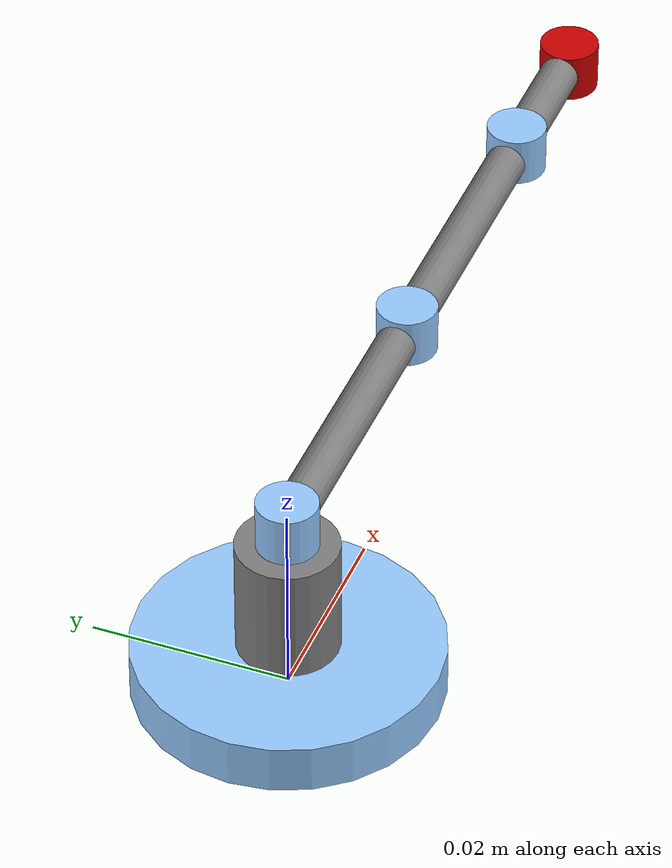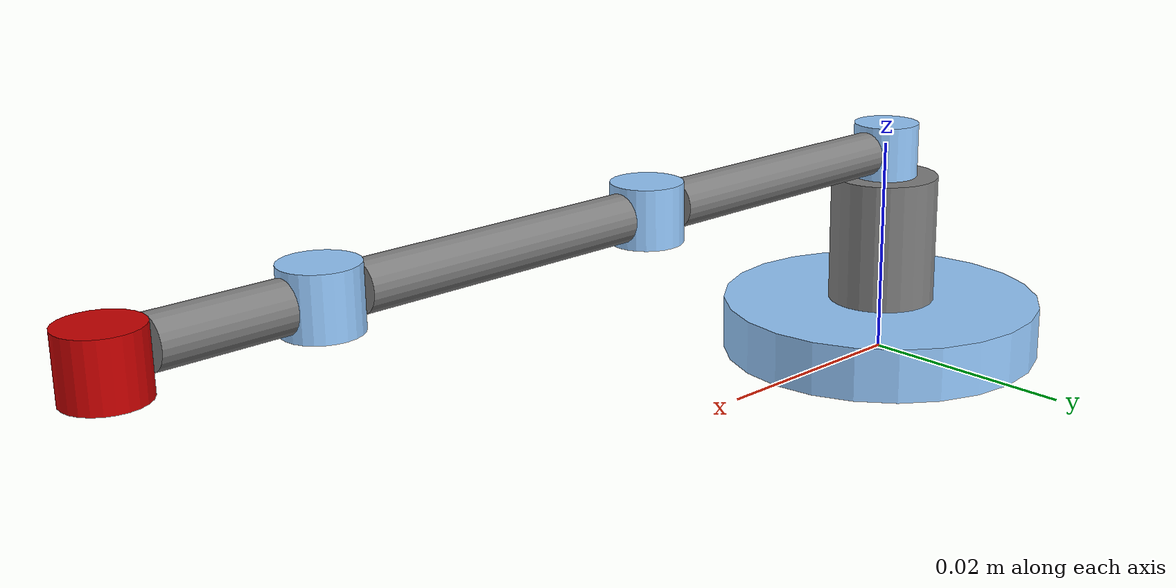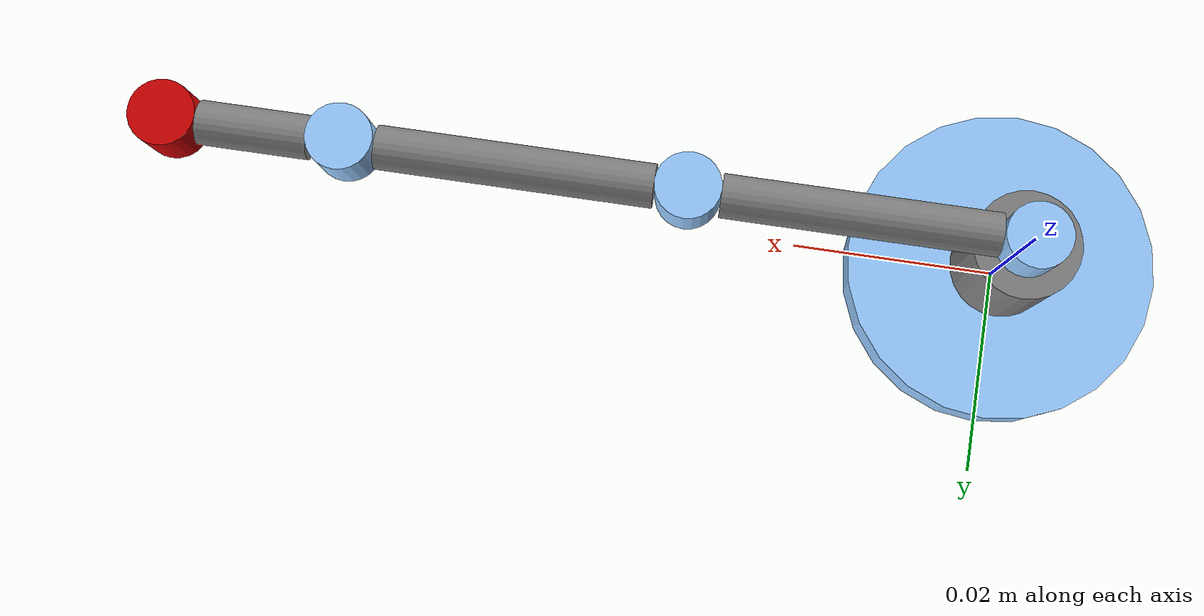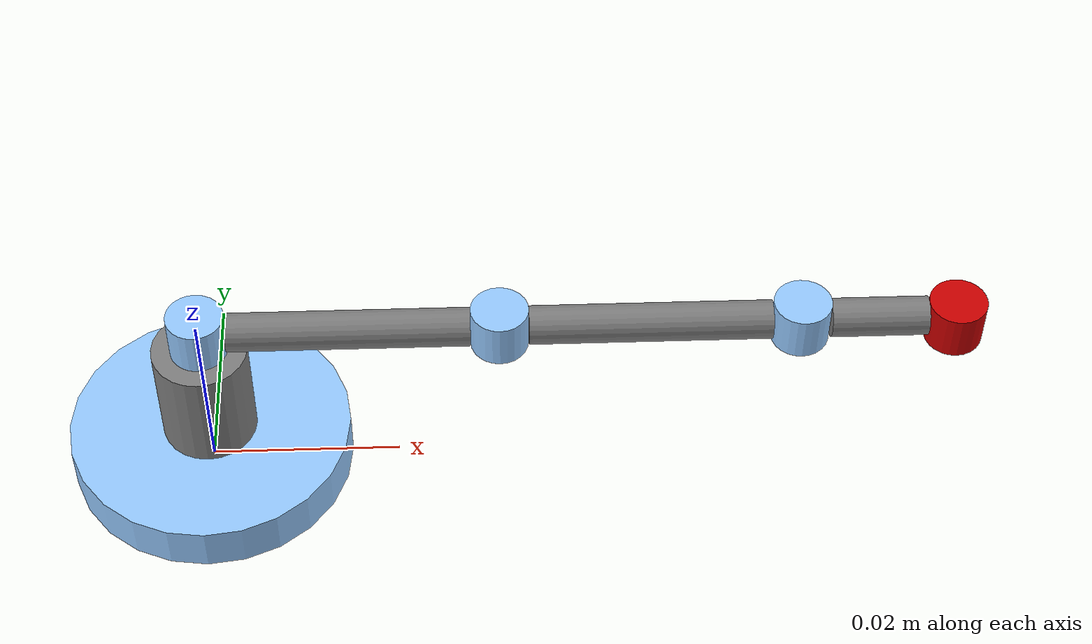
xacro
<?xml version="1.0"?>

<!-- Make the namespace of the robot-->
<robot xmlns:xacro="http://www.ros.org/wiki/xacro" name="r3_arm">

    <!--Define constants-->

    <xacro:property name="M_PI" value="3.14159"/>

    <!-- Constants for the robotic arm (masses in kg, lengths in m) -->

    <xacro:property name="max_effort" value="100" />
    <xacro:property name="max_velocity" value="${M_PI/4}" />

    <xacro:property name="damping_1" value="0.005" />
    <xacro:property name="damping_2" value="0.005" />
    <xacro:property name="damping_3" value="0.005" />

    <xacro:property name="friction_1" value="0.001" />
    <xacro:property name="friction_2" value="0.001" />
    <xacro:property name="friction_3" value="0.001" />

    <!-- base_link -->
    <xacro:property name="length_0" value="0.005" />
    <xacro:property name="radius_0" value="0.015" />
    <xacro:property name="mass_0" value="0.500" />

    <!-- joint_f0 fixed -->

    <!-- link_1 -->
    <xacro:property name="length_1" value="0.012" />
    <xacro:property name="radius_1" value="0.005" />
    <xacro:property name="mass_1" value="0.300" />

    <!-- revolute joint link_1 - link_j1 -->

    <!-- link_j1 -->
    <xacro:property name="length_j1" value="0.005" />
    <xacro:property name="radius_j1" value="0.003" />
    <xacro:property name="mass_j1" value="0.020" />

    <!-- joint_f1 fixed -->

    <!-- link_2 -->
    <xacro:property name="length_2" value="0.025" />
    <xacro:property name="radius_2" value="0.002" />
    <xacro:property name="mass_2" value="0.050" />

    <!-- revolute joint link_2 - link_j2 -->

    <!-- link_j2 -->
    <xacro:property name="length_j2" value="0.005" />
    <xacro:property name="radius_j2" value="0.003" />
    <xacro:property name="mass_j2" value="0.020" />

    <!-- joint_f2 fixed -->

    <!-- link_3 -->
    <xacro:property name="length_3" value="0.025" />
    <xacro:property name="radius_3" value="0.002" />
    <xacro:property name="mass_3" value="0.020" />

    <!-- revolute joint link_3 - link_j3 -->

    <!-- link_j3 -->
    <xacro:property name="length_j3" value="0.005" />
    <xacro:property name="radius_j3" value="0.003" />
    <xacro:property name="mass_j3" value="0.020" />

    <!-- joint_f3 fixed -->

    <!-- link_4 -->
    <xacro:property name="length_4" value="0.010" />
    <xacro:property name="radius_4" value="0.002" />
    <xacro:property name="mass_4" value="0.010" />

    <!-- joint_f4 fixed link_4 - link_ee -->

    <!--Define colors-->
    <material name="Black">
        <color rgba="0.0 0.0 0.0 1.0"/>
    </material>
    <material name="Red">
        <color rgba="0.8 0.0 0.0 1.0"/>
    </material>
    <material name="Blue">
        <color rgba="0.0 0.0 1.0 1.0"/>
    </material>
    <material name="LightBlue">
        <color rgba="0.589 0.793 1.0 1.0"/>
    </material>
    <material name="Grey">
        <color rgba="0.5 0.5 0.5 1.0"/>
    </material>
    <material name="White">
        <color rgba="1.0 1.0 1.0 1.0"/>
    </material>

    <!-- macros for inertia -->

    <!-- ref: https://en.wikipedia.org/wiki/List_of_moments_of_inertia#List_of_3D_inertia_tensors -->

    <xacro:macro name="cylinder_inertial_block" params="mass length radius">
      <inertial>
        <origin xyz="0 0 ${length/2}" rpy="0 0 0"/>
        <mass value="${mass}"/>
        <inertia
            ixx="${mass / 12.0 * (3*radius*radius+length*length)}" ixy="0.0" ixz="0.0"
            iyy="${mass / 12.0 * (3*radius*radius+length*length)}" iyz="0.0"
            izz="${mass / 2.0 * (radius*radius)}" />
      </inertial>
    </xacro:macro>

    <xacro:macro name="box_inertial_block" params="mass x y z">
      <inertial>
        <origin xyz="0 0 ${z/2}" rpy="0 0 0"/>
        <mass value="${mass}"/>
        <inertia
            ixx="${mass / 12.0 * (y*y+z*z)}" ixy="0.0" ixz="0.0"
            iyy="${mass / 12.0 * (x*x+z*z)}" iyz="0.0"
            izz="${mass / 12.0 * (x*x+y*y)}" />
      </inertial>
    </xacro:macro>

    <!-- macros for transmission -->
    <xacro:macro name="transmission_block" params="joint_name">
	  <transmission name="tran1">
	    <type>transmission_interface/SimpleTransmission</type>
	    <joint name="${joint_name}">
          <!-- Position/Velocity/Effort|JointInterface -->
	      <hardwareInterface>hardware_interface/EffortJointInterface</hardwareInterface>
	    </joint>
	    <actuator name="motor_${joint_name}">
	      <hardwareInterface>hardware_interface/EffortJointInterface</hardwareInterface>
	      <mechanicalReduction>1</mechanicalReduction>
	    </actuator>
	  </transmission>
    </xacro:macro>

    <!--Define Gazebo colors-->
    <xacro:macro name="gazebo_grey_link_color_block" params="link_name">
    <gazebo reference="${link_name}">
    <visual>
      <material>
        <ambient>0.5 0.5 0.5 1.0</ambient>
        <diffuse>0.56666695 0.56666695 0.56666695 1.0</diffuse>
        <specular>0.6000003 0.6000003 0.6000003 1.0</specular>
      </material>
    </visual>
    </gazebo>
    </xacro:macro>

    <xacro:macro name="gazebo_blue_link_color_block" params="link_name">
    <gazebo reference="${link_name}">
    <visual>
      <material>
	<ambient>0.589 0.793 1.0 1.0</ambient>
	<diffuse>0.56666695 0.56666695 0.56666695 1.0</diffuse>
	<specular>0.6000003 0.6000003 0.6000003 1.0</specular>
      </material>
    </visual>
    </gazebo>
    </xacro:macro>

    <xacro:macro name="gazebo_orange_link_color_block" params="link_name">
    <gazebo reference="${link_name}">
    <visual>
      <material>
	    <ambient>1.0 0.4 0.0 1.0</ambient>
	    <diffuse>0.56666695 0.56666695 0.56666695 1.0</diffuse>
	    <specular>0.6000003 0.6000003 0.6000003 1.0</specular>
      </material>
    </visual>
    </gazebo>
    </xacro:macro>

    <xacro:macro name="gazebo_red_link_color_block" params="link_name">
    <gazebo reference="${link_name}">
    <visual>
      <material>
	    <ambient>1.0 0.0 0.0 1.0</ambient>
	    <diffuse>0.56666695 0.56666695 0.56666695 1.0</diffuse>
	    <specular>0.6000003 0.6000003 0.6000003 1.0</specular>
      </material>
    </visual>
    </gazebo>
    </xacro:macro>

    <xacro:macro name="gazebo_self_collision" params="link_name">
    <gazebo reference="${link_name}">
      <selfCollide>true</selfCollide>
    </gazebo>
    </xacro:macro>

    <link name="world"/>

    <!-- joint world - base_link -->
    <joint name="world_joint" type="fixed">
        <origin xyz="0.0 0.0 0.0" rpy="0.0 0.0 0.0"/>
        <parent link="world"/>
        <child link="base_link"/>
    </joint>

    <!-- base_link -->
    <link name="base_link">
        <xacro:cylinder_inertial_block mass="${mass_0}" length="${length_0}" radius="${radius_0}"/>
        <visual>
            <origin xyz="0.0 0.0 ${length_0/2.0}" rpy="0.0 0.0 0.0"/>
            <geometry>
                <cylinder radius="${radius_0}" length="${length_0}"/>
            </geometry>
            <material name="LightBlue"/>
        </visual>
        <collision>
            <origin xyz="0.0 0.0 ${length_0/2.0}" rpy="0.0 0.0 0.0"/>
            <geometry>
                <cylinder radius="${radius_0}" length="${length_0}"/>
            </geometry>>
        </collision>
    </link>
    <xacro:gazebo_orange_link_color_block link_name="base_link"/>

    <!-- fixed joint base_link - link_1 -->
    <joint name="joint_f0" type="fixed">
        <origin xyz="0.0 0.0 ${length_0}" rpy="0.0 0.0 0.0"/>
        <parent link="base_link"/>
        <child link="link_1"/>
    </joint>
    <gazebo reference="joint_f0">
        <disableFixedJointLumping>true</disableFixedJointLumping>
        <preserveFixedJoint>true</preserveFixedJoint>
    </gazebo>

    <!-- link_1 -->
    <link name="link_1">
        <xacro:cylinder_inertial_block mass="${mass_1}" length="${length_1}" radius="${radius_1}"/>
        <visual>
            <origin xyz="0.0 0.0 ${length_1/2.0}" rpy="0.0 0.0 0.0"/>
            <geometry>
                <cylinder radius="${radius_1}" length="${length_1}"/>
            </geometry>
            <material name="Grey"/>
        </visual>
        <collision>
            <origin xyz="0.0 0.0 ${length_1/2.0}" rpy="0.0 0.0 0.0"/>
            <geometry>
                <cylinder radius="${radius_1}" length="${length_1}"/>
            </geometry>>
        </collision>
    </link>
    <xacro:gazebo_grey_link_color_block link_name="link_1"/>

    <!-- revolute joint_1 link_1 - link_j1 -->
    <joint name="joint_1" type="revolute">
        <origin xyz="0.0 0.0 ${length_1}" rpy="0.0 0.0 0.0"/>
        <parent link="link_1"/>
        <child link="link_j1"/>
        <axis xyz="0 0 1"/>
        <dynamics damping="${damping_1}" friction="${friction_1}" />
        <limit lower="${-100*M_PI}" upper="${100*M_PI}" effort="${max_effort}" velocity="${max_velocity}"/>
    </joint>

    <!-- link link_j1 -->
    <link name="link_j1">
        <xacro:cylinder_inertial_block mass="${mass_j1}" length="${length_j1}" radius="${radius_j1}"/>
        <visual>
            <origin xyz="0.0 0.0 ${length_j1/2.0}" rpy="0.0 0.0 0.0"/>
            <geometry>
                <cylinder radius="${radius_j1}" length="${length_j1}"/>
            </geometry>
            <material name="LightBlue"/>
        </visual>
        <collision>
            <origin xyz="0.0 0.0 ${length_j1/2.0}" rpy="0.0 0.0 0.0"/>
            <geometry>
                <cylinder radius="${radius_j1}" length="${length_j1}"/>
            </geometry>
        </collision>
    </link>
    <xacro:gazebo_blue_link_color_block link_name="link_j1"/>

    <!-- fixed joint link_j1 - link_2 -->
    <joint name="joint_f1" type="fixed">
        <origin xyz="${radius_j1} 0.0 ${length_j1/2.0}" rpy="0.0 ${M_PI/2} 0.0"/>
        <parent link="link_j1"/>
        <child link="link_2"/>
    </joint>
    <gazebo reference="joint_f1">
        <disableFixedJointLumping>true</disableFixedJointLumping>
        <preserveFixedJoint>true</preserveFixedJoint>
    </gazebo>

    <!--link_2-->
    <link name="link_2">
        <xacro:cylinder_inertial_block mass="${mass_2}" length="${length_2}" radius="${radius_2}"/>
        <visual>
            <origin xyz="0.0 0.0 ${length_2/2.0}" rpy="0.0 0.0 0.0"/>
            <geometry>
                <cylinder radius="${radius_2}" length="${length_2}"/>
            </geometry>
            <material name="Grey"/>
        </visual>
        <collision>
            <origin xyz="0.0 0.0 ${length_2/2.0}" rpy="0.0 0.0 0.0"/>
            <geometry>
                <cylinder radius="${radius_2}" length="${length_2}"/>
            </geometry>>
        </collision>
    </link>
    <xacro:gazebo_grey_link_color_block link_name="link_2"/>

    <!-- revolute joint_2 link_2 - link_j2 -->
    <joint name="joint_2" type="revolute">
        <origin xyz="${length_j2/2.0} 0.0 ${length_2+radius_j2}" rpy="0.0 ${-M_PI/2} 0.0"/>
        <parent link="link_2"/>
        <child link="link_j2"/>
        <axis xyz="0 0 1"/>
        <dynamics damping="${damping_2}" friction="${friction_2}"/>
        <limit lower="${-M_PI*11/12}" upper="${M_PI*11/12}" effort="${max_effort}" velocity="${max_velocity}"/>
    </joint>

    <!-- link link_j2 -->
    <link name="link_j2">
        <xacro:cylinder_inertial_block mass="${mass_j2}" length="${length_j2}" radius="${radius_j2}"/>
        <visual>
            <origin xyz="0.0 0.0 ${length_j2/2.0}" rpy="0.0 0.0 0.0"/>
            <geometry>
                <cylinder radius="${radius_j2}" length="${length_j2}"/>
            </geometry>
            <material name="LightBlue"/>
        </visual>

        <collision>
            <origin xyz="0.0 0.0 ${length_j2/2.0}" rpy="0.0 0.0 0.0"/>
            <geometry>
                <cylinder radius="${radius_j2}" length="${length_j2}"/>
            </geometry>
        </collision>
    </link>
    <xacro:gazebo_blue_link_color_block link_name="link_j2"/>

    <!-- fixed joint link_j2 - link_3 -->
    <joint name="joint_f2" type="fixed">
        <origin xyz="${radius_j2} 0.0 ${length_j2/2.0}" rpy="0.0 ${M_PI/2} 0.0"/>
        <parent link="link_j2"/>
        <child link="link_3"/>
    </joint>
    <gazebo reference="joint_f2">
        <disableFixedJointLumping>true</disableFixedJointLumping>
        <preserveFixedJoint>true</preserveFixedJoint>
    </gazebo>

    <!--link_3-->
    <link name="link_3">
        <xacro:cylinder_inertial_block mass="${mass_3}" length="${length_3}" radius="${radius_3}"/>
        <visual>
            <origin xyz="0.0 0.0 ${length_3/2.0}" rpy="0.0 0.0 0.0"/>
            <geometry>
                <cylinder radius="${radius_3}" length="${length_3}"/>
            </geometry>
            <material name="Grey"/>
        </visual>

        <collision>
            <origin xyz="0.0 0.0 ${length_3/2.0}" rpy="0.0 0.0 0.0"/>
            <geometry>
                <cylinder radius="${radius_3}" length="${length_3}"/>
            </geometry>>
        </collision>
    </link>
    <xacro:gazebo_grey_link_color_block link_name="link_3"/>

    <!-- revolute joint_3 link_3 - link_j3 -->
    <joint name="joint_3" type="revolute">
        <origin xyz="${length_j3/2.0} 0.0 ${length_3+radius_j3}" rpy="0.0 ${-M_PI/2} 0.0"/>
        <parent link="link_3"/>
        <child link="link_j3"/>
        <axis xyz="0 0 1"/>
        <dynamics damping="${damping_3}" friction="${friction_3}"/>
        <limit lower="${-2.2}" upper="${2.2}" effort="${max_effort}" velocity="${max_velocity}"/>
    </joint>

    <!-- link link_j3 -->
    <link name="link_j3">
        <xacro:cylinder_inertial_block mass="${mass_j3}" length="${length_j3}" radius="${radius_j3}"/>
        <visual>
            <origin xyz="0.0 0.0 ${length_j3/2.0}" rpy="0.0 0.0 0.0"/>
            <geometry>
                <cylinder radius="${radius_j3}" length="${length_j3}"/>
            </geometry>
            <material name="LightBlue"/>
        </visual>

        <collision>
            <origin xyz="0.0 0.0 ${length_j3/2.0}" rpy="0.0 0.0 0.0"/>
            <geometry>
                <cylinder radius="${radius_j3}" length="${length_j3}"/>
            </geometry>
        </collision>
    </link>
    <xacro:gazebo_blue_link_color_block link_name="link_j3"/>

    <!-- fixed joint link_j3 - link_4 -->
    <joint name="joint_f3" type="fixed">
        <origin xyz="${radius_j3} 0.0 ${length_j3/2.0}" rpy="0.0 ${M_PI/2} 0.0"/>
        <parent link="link_j3"/>
        <child link="link_4"/>
    </joint>
    <gazebo reference="joint_f3">
        <disableFixedJointLumping>true</disableFixedJointLumping>
        <preserveFixedJoint>true</preserveFixedJoint>
    </gazebo>

    <!--link_4-->
    <link name="link_4">
        <xacro:cylinder_inertial_block mass="${mass_4}" length="${length_4}" radius="${radius_4}"/>
        <visual>
            <origin xyz="0.0 0.0 ${length_4/2.0}" rpy="0.0 0.0 0.0"/>
            <geometry>
                <cylinder radius="${radius_4}" length="${length_4}"/>
            </geometry>
            <material name="Grey"/>
        </visual>

        <collision>
            <origin xyz="0.0 0.0 ${length_4/2.0}" rpy="0.0 0.0 0.0"/>
            <geometry>
                <cylinder radius="${radius_4}" length="${length_4}"/>
            </geometry>>
        </collision>
    </link>
    <xacro:gazebo_grey_link_color_block link_name="link_4"/>

    <!-- fixed joint link_4 - link_ee -->
    <xacro:include filename="$(find rarms_gazebo)/urdf/hand.xacro" />

    <joint name="joint_f4" type="fixed">
        <origin xyz="${-radius_4} 0.0 ${length_4+radius_ee}" rpy="0.0 ${M_PI/2} 0.0"/>
        <parent link="link_4"/>
        <child link="link_ee"/>
    </joint>
    <gazebo reference="joint_f4">
        <disableFixedJointLumping>true</disableFixedJointLumping>
        <preserveFixedJoint>true</preserveFixedJoint>
    </gazebo>

    <!-- fixed joint link_4 - EE_gripper -->

<!-- self collision -->

     <xacro:gazebo_self_collision link_name="base_link"/>
     <xacro:gazebo_self_collision link_name="link_1"/>
     <xacro:gazebo_self_collision link_name="link_2"/>
     <xacro:gazebo_self_collision link_name="link_3"/>
     <xacro:gazebo_self_collision link_name="link_4"/>
     <xacro:gazebo_self_collision link_name="link_j1"/>
     <xacro:gazebo_self_collision link_name="link_j2"/>
     <xacro:gazebo_self_collision link_name="link_j3"/>
     <xacro:gazebo_self_collision link_name="EE_part_1"/>
     <xacro:gazebo_self_collision link_name="EE_part_21"/>
     <xacro:gazebo_self_collision link_name="EE_part_22"/>

    <!-- Transmissions for ros control -->
    <xacro:transmission_block joint_name="joint_1"/>
    <xacro:transmission_block joint_name="joint_2"/>
    <xacro:transmission_block joint_name="joint_3"/>

    <!-- ros_control plugin -->
    <gazebo>
        <plugin name="gazebo_ros_control" filename="libgazebo_ros_control.so">
        <robotNamespace>/r3_arm</robotNamespace>
        </plugin>
    </gazebo>

</robot>

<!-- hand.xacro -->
<robot xmlns:xacro="http://www.ros.org/wiki/xacro" name="hand">

    <xacro:macro name="gazebo_red_link_color_block" params="link_name">
    <gazebo reference="${link_name}">
    <visual>
      <material>
	    <ambient>1.0 0.0 0.0 1.0</ambient>
	    <diffuse>0.56666695 0.56666695 0.56666695 1.0</diffuse>
	    <specular>0.6000003 0.6000003 0.6000003 1.0</specular>
      </material>
    </visual>
    </gazebo>
    </xacro:macro>

    <!-- link_ee -->
    <xacro:property name="length_ee" value="0.005" />
    <xacro:property name="radius_ee" value="0.003" />
    <xacro:property name="mass_ee" value="0.100" />

    <!-- link_ee -->
    <link name="link_ee">
        <xacro:cylinder_inertial_block mass="${mass_ee}" length="${length_ee}" radius="${radius_ee}"/>
        <visual>
            <origin xyz="0.0 0.0 ${length_ee/2.0}" rpy="0.0 0.0 0.0"/>
            <geometry>
                <cylinder radius="${radius_ee}" length="${length_ee}"/>
            </geometry>
            <material name="Red"/>
        </visual>

        <collision>
            <origin xyz="0.0 0.0 ${length_ee/2.0}" rpy="0.0 0.0 0.0"/>
            <geometry>
                <cylinder radius="${radius_ee}" length="${length_ee}"/>
            </geometry>>
        </collision>
    </link>
    <xacro:gazebo_red_link_color_block link_name="link_ee"/>

</robot>
